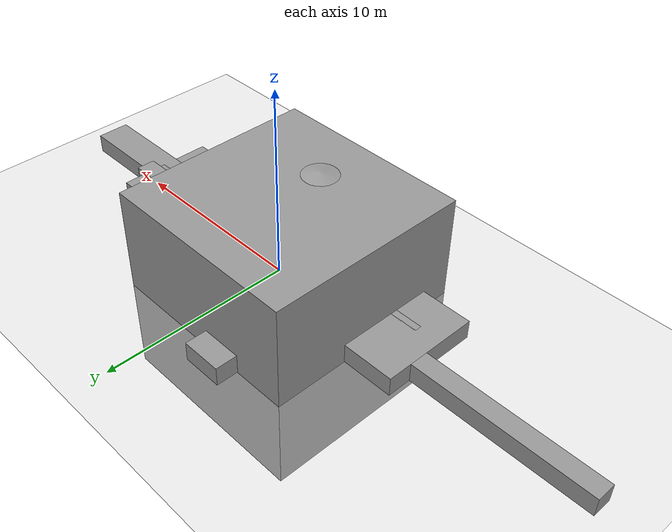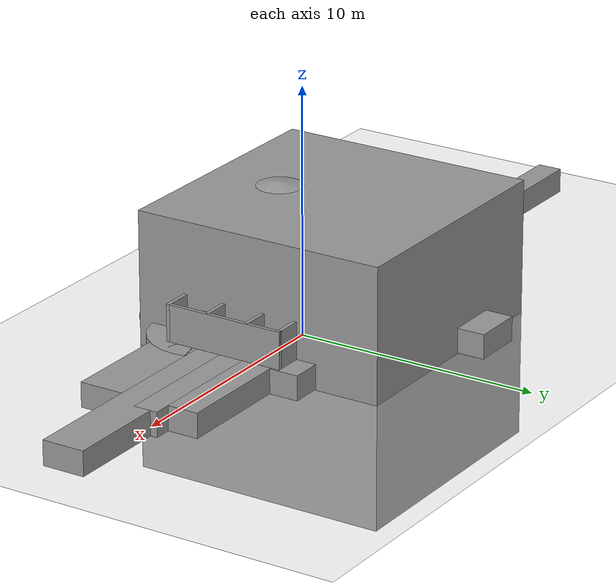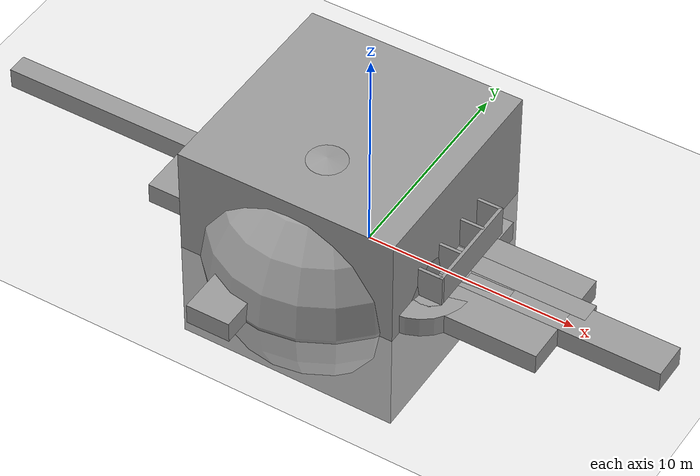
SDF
<sdf version="1.7">
 <world name="default">
  <light name="sun" type="directional">
   <pose>0 0 10 0 -0 0</pose>
   <diffuse>0.8 0.8 0.8 1</diffuse>
   <specular>0.2 0.2 0.2 1</specular>
   <attenuation>
    <range>1000</range>
    <constant>0.9</constant>
    <linear>0.01</linear>
    <quadratic>0.001</quadratic>
   </attenuation>
   <direction>-0.5 0.1 -0.9</direction>
   <spot><inner_angle>0</inner_angle><outer_angle>0</outer_angle><falloff>0</falloff></spot>
  </light>
  <model name="ground_plane">
   <static>1</static>
   <link name="link">
    <collision name="collision">
     <geometry><plane><normal>0 0 1</normal><size>100 100</size></plane></geometry>
     <surface>
      <contact><collide_bitmask>65535</collide_bitmask></contact>
      <friction><ode><mu>100</mu><mu2>50</mu2></ode></friction>
     </surface>
    </collision>
    <visual name="visual">
     <cast_shadows>0</cast_shadows>
     <geometry><plane><normal>0 0 1</normal><size>100 100</size></plane></geometry>
     <material>
      <script><uri>file://media/materials/scripts/gazebo.material</uri><name>Gazebo/Grey</name></script>
     </material>
    </visual>
   </link>
  </model>
  <gravity>0 0 -9.8</gravity>
  <magnetic_field>6e-06 2.3e-05 -4.2e-05</magnetic_field>
  <atmosphere type="adiabatic"/>
  <physics type="ode">
   <max_step_size>0.001</max_step_size>
   <real_time_factor>1</real_time_factor>
   <real_time_update_rate>1000</real_time_update_rate>
  </physics>
  <scene><ambient>0.4 0.4 0.4 1</ambient><background>0.7 0.7 0.7 1</background><shadows>1</shadows></scene>
  <audio><device>default</device></audio>
  <spherical_coordinates>
   <surface_model>EARTH_WGS84</surface_model>
   <latitude_deg>0</latitude_deg>
   <longitude_deg>0</longitude_deg>
   <elevation>0</elevation>
   <heading_deg>0</heading_deg>
  </spherical_coordinates>
  <model name="sixroom_0">
   <pose>0.171123 2.13265 0 0 -0 0</pose>
   <link name="Wall_112">
    <collision name="Wall_112_Collision">
     <geometry><box><size>0.5 0.15 2.5</size></box></geometry>
     <pose>0 0 1.25 0 -0 0</pose>
    </collision>
    <visual name="Wall_112_Visual">
     <pose>0 0 1.25 0 -0 0</pose>
     <geometry><box><size>0.5 0.15 2.5</size></box></geometry>
     <material>
      <script><uri>file://media/materials/scripts/gazebo.material</uri><name>Gazebo/Grey</name></script>
      <ambient>1 1 1 1</ambient>
     </material>
     <meta><layer>0</layer></meta>
    </visual>
    <pose>-2.487 -4.46743 0 0 -0 1.5708</pose>
   </link>
   <link name="Wall_66">
    <collision name="Wall_66_Collision">
     <geometry><box><size>10 0.15 2.5</size></box></geometry>
     <pose>0 0 1.25 0 -0 0</pose>
    </collision>
    <visual name="Wall_66_Visual">
     <pose>0 0 1.25 0 -0 0</pose>
     <geometry><box><size>10 0.15 2.5</size></box></geometry>
     <material>
      <script><uri>file://media/materials/scripts/gazebo.material</uri><name>Gazebo/Grey</name></script>
      <ambient>1 1 1 1</ambient>
     </material>
     <meta><layer>0</layer></meta>
    </visual>
    <pose>-0 0.11857 0 0 -0 0</pose>
   </link>
   <link name="Wall_67">
    <collision name="Wall_67_Collision">
     <geometry><box><size>5 0.15 2.5</size></box></geometry>
     <pose>0 0 1.25 0 -0 0</pose>
    </collision>
    <visual name="Wall_67_Visual">
     <pose>0 0 1.25 0 -0 0</pose>
     <geometry><box><size>5 0.15 2.5</size></box></geometry>
     <material>
      <script><uri>file://media/materials/scripts/gazebo.material</uri><name>Gazebo/Grey</name></script>
      <ambient>1 1 1 1</ambient>
     </material>
     <meta><layer>0</layer></meta>
    </visual>
    <pose>4.925 -2.30643 0 0 -0 -1.5708</pose>
   </link>
   <link name="Wall_68">
    <collision name="Wall_68_Collision">
     <geometry><box><size>10 0.15 2.5</size></box></geometry>
     <pose>0 0 1.25 0 -0 0</pose>
    </collision>
    <visual name="Wall_68_Visual">
     <pose>0 0 1.25 0 -0 0</pose>
     <geometry><box><size>10 0.15 2.5</size></box></geometry>
     <material>
      <script><uri>file://media/materials/scripts/gazebo.material</uri><name>Gazebo/Grey</name></script>
      <ambient>1 1 1 1</ambient>
     </material>
     <meta><layer>0</layer></meta>
    </visual>
    <pose>-0 -4.73143 0 0 -0 3.14159</pose>
   </link>
   <link name="Wall_69">
    <collision name="Wall_69_Collision">
     <geometry><box><size>5 0.15 2.5</size></box></geometry>
     <pose>0 0 1.25 0 -0 0</pose>
    </collision>
    <visual name="Wall_69_Visual">
     <pose>0 0 1.25 0 -0 0</pose>
     <geometry><box><size>5 0.15 2.5</size></box></geometry>
     <material>
      <script><uri>file://media/materials/scripts/gazebo.material</uri><name>Gazebo/Grey</name></script>
      <ambient>1 1 1 1</ambient>
     </material>
     <meta><layer>0</layer></meta>
    </visual>
    <pose>-4.925 -2.30643 0 0 -0 1.5708</pose>
   </link>
   <link name="Wall_71">
    <collision name="Wall_71_Collision">
     <geometry><box><size>1.25 0.15 2.5</size></box></geometry>
     <pose>0 0 1.25 0 -0 0</pose>
    </collision>
    <visual name="Wall_71_Visual">
     <pose>0 0 1.25 0 -0 0</pose>
     <geometry><box><size>1.25 0.15 2.5</size></box></geometry>
     <material>
      <script><uri>file://media/materials/scripts/gazebo.material</uri><name>Gazebo/Grey</name></script>
      <ambient>1 1 1 1</ambient>
     </material>
     <meta><layer>0</layer></meta>
    </visual>
    <pose>-4.3635 -1.35343 0 0 -0 0</pose>
   </link>
   <link name="Wall_73">
    <collision name="Wall_73_Collision">
     <geometry><box><size>0.75 0.15 2.5</size></box></geometry>
     <pose>0 0 1.25 0 -0 0</pose>
    </collision>
    <visual name="Wall_73_Visual">
     <pose>0 0 1.25 0 -0 0</pose>
     <geometry><box><size>0.75 0.15 2.5</size></box></geometry>
     <material>
      <script><uri>file://media/materials/scripts/gazebo.material</uri><name>Gazebo/Grey</name></script>
      <ambient>1 1 1 1</ambient>
     </material>
     <meta><layer>0</layer></meta>
    </visual>
    <pose>-3.131 -0.27343 0 0 -0 -1.5708</pose>
   </link>
   <link name="Wall_75">
    <collision name="Wall_75_Collision">
     <geometry><box><size>2 0.15 2.5</size></box></geometry>
     <pose>0 0 1.25 0 -0 0</pose>
    </collision>
    <visual name="Wall_75_Visual">
     <pose>0 0 1.25 0 -0 0</pose>
     <geometry><box><size>2 0.15 2.5</size></box></geometry>
     <material>
      <script><uri>file://media/materials/scripts/gazebo.material</uri><name>Gazebo/Grey</name></script>
      <ambient>1 1 1 1</ambient>
     </material>
     <meta><layer>0</layer></meta>
    </visual>
    <pose>-2.16 -1.35343 0 0 -0 0</pose>
   </link>
   <link name="Wall_77">
    <collision name="Wall_77_Collision">
     <geometry><box><size>2.75 0.15 2.5</size></box></geometry>
     <pose>0 0 1.25 0 -0 0</pose>
    </collision>
    <visual name="Wall_77_Visual">
     <pose>0 0 1.25 0 -0 0</pose>
     <geometry><box><size>2.75 0.15 2.5</size></box></geometry>
     <material>
      <script><uri>file://media/materials/scripts/gazebo.material</uri><name>Gazebo/Grey</name></script>
      <ambient>1 1 1 1</ambient>
     </material>
     <meta><layer>0</layer></meta>
    </visual>
    <pose>0.8945 -1.31893 0 0 -0 0</pose>
   </link>
   <link name="Wall_79">
    <collision name="Wall_79_Collision">
     <geometry><box><size>2 0.15 2.5</size></box></geometry>
     <pose>0 0 1.25 0 -0 0</pose>
    </collision>
    <visual name="Wall_79_Visual">
     <pose>0 0 1.25 0 -0 0</pose>
     <geometry><box><size>2 0.15 2.5</size></box></geometry>
     <material>
      <script><uri>file://media/materials/scripts/gazebo.material</uri><name>Gazebo/Grey</name></script>
      <ambient>1 1 1 1</ambient>
     </material>
     <meta><layer>0</layer></meta>
    </visual>
    <pose>3.935 -1.29593 0 0 -0 0</pose>
   </link>
   <link name="Wall_81">
    <collision name="Wall_81_Collision">
     <geometry><box><size>0.75 0.15 2.5</size></box></geometry>
     <pose>0 0 1.25 0 -0 0</pose>
    </collision>
    <visual name="Wall_81_Visual">
     <pose>0 0 1.25 0 -0 0</pose>
     <geometry><box><size>0.75 0.15 2.5</size></box></geometry>
     <material>
      <script><uri>file://media/materials/scripts/gazebo.material</uri><name>Gazebo/Grey</name></script>
      <ambient>1 1 1 1</ambient>
     </material>
     <meta><layer>0</layer></meta>
    </visual>
    <pose>2.228 -0.19293 0 0 -0 -1.5708</pose>
   </link>
   <link name="Wall_83">
    <collision name="Wall_83_Collision">
     <geometry><box><size>2.5 0.15 2.5</size></box></geometry>
     <pose>0 0 1.25 0 -0 0</pose>
    </collision>
    <visual name="Wall_83_Visual">
     <pose>0 0 1.25 0 -0 0</pose>
     <geometry><box><size>2.5 0.15 2.5</size></box></geometry>
     <material>
      <script><uri>file://media/materials/scripts/gazebo.material</uri><name>Gazebo/Grey</name></script>
      <ambient>1 1 1 1</ambient>
     </material>
     <meta><layer>0</layer></meta>
    </visual>
    <pose>-3.6925 -3.02093 0 0 -0 0</pose>
   </link>
   <link name="Wall_85">
    <collision name="Wall_85_Collision">
     <geometry><box><size>0.75 0.15 2.5</size></box></geometry>
     <pose>0 0 1.25 0 -0 0</pose>
    </collision>
    <visual name="Wall_85_Visual">
     <pose>0 0 1.25 0 -0 0</pose>
     <geometry><box><size>0.75 0.15 2.5</size></box></geometry>
     <material>
      <script><uri>file://media/materials/scripts/gazebo.material</uri><name>Gazebo/Grey</name></script>
      <ambient>1 1 1 1</ambient>
     </material>
     <meta><layer>0</layer></meta>
    </visual>
    <pose>-2.5175 -3.32093 0 0 -0 -1.5708</pose>
   </link>
   <link name="Wall_91">
    <collision name="Wall_91_Collision">
     <geometry><box><size>0.15 0.15 2.5</size></box></geometry>
     <pose>0 0 1.25 0 -0 0</pose>
    </collision>
    <visual name="Wall_91_Visual">
     <pose>0 0 1.25 0 -0 0</pose>
     <geometry><box><size>0.15 0.15 2.5</size></box></geometry>
     <material>
      <script><uri>file://media/materials/scripts/gazebo.material</uri><name>Gazebo/Grey</name></script>
      <ambient>1 1 1 1</ambient>
     </material>
     <meta><layer>0</layer></meta>
    </visual>
    <pose>-2.51 -4.43193 0 0 -0 0</pose>
   </link>
   <link name="Wall_93">
    <collision name="Wall_93_Collision">
     <geometry><box><size>4.25 0.15 2.5</size></box></geometry>
     <pose>0 0 1.25 0 -0 0</pose>
    </collision>
    <visual name="Wall_93_Visual">
     <pose>0 0 1.25 0 -0 0</pose>
     <geometry><box><size>4.25 0.15 2.5</size></box></geometry>
     <material>
      <script><uri>file://media/materials/scripts/gazebo.material</uri><name>Gazebo/Grey</name></script>
      <ambient>1 1 1 1</ambient>
     </material>
     <meta><layer>0</layer></meta>
    </visual>
    <pose>-0.4675 -3.02093 0 0 -0 0</pose>
   </link>
   <link name="Wall_95">
    <collision name="Wall_95_Collision">
     <geometry><box><size>2.25 0.15 2.5</size></box></geometry>
     <pose>0 0 1.25 0 -0 0</pose>
    </collision>
    <visual name="Wall_95_Visual">
     <pose>0 0 1.25 0 -0 0</pose>
     <geometry><box><size>2.25 0.15 2.5</size></box></geometry>
     <material>
      <script><uri>file://media/materials/scripts/gazebo.material</uri><name>Gazebo/Grey</name></script>
      <ambient>1 1 1 1</ambient>
     </material>
     <meta><layer>0</layer></meta>
    </visual>
    <pose>3.7955 -3.03243 0 0 -0 0</pose>
   </link>
   <static>1</static>
  </model>
  <model name="unit_sphere">
   <pose>1.00894 1.41064 0.238061 0 -0 0</pose>
   <link name="link">
    <inertial>
     <mass>1</mass>
     <inertia><ixx>0.1</ixx><ixy>0</ixy><ixz>0</ixz><iyy>0.1</iyy><iyz>0</iyz><izz>0.1</izz></inertia>
    </inertial>
    <collision name="collision"><geometry><sphere><radius>2.20563</radius></sphere></geometry></collision>
    <visual name="visual">
     <geometry><sphere><radius>2.20563</radius></sphere></geometry>
     <material>
      <script><name>Gazebo/Grey</name><uri>file://media/materials/scripts/gazebo.material</uri></script>
     </material>
    </visual>
   </link>
  </model>
  <model name="unit_cylinder_0">
   <pose>1.26052 0.053203 0.247885 0 -0 0</pose>
   <link name="link">
    <inertial>
     <mass>1</mass>
     <inertia><ixx>0.145833</ixx><ixy>0</ixy><ixz>0</ixz><iyy>0.145833</iyy><iyz>0</iyz><izz>0.125</izz></inertia>
    </inertial>
    <collision name="collision">
     <geometry><cylinder><radius>2.03415</radius><length>4.06832</length></cylinder></geometry>
    </collision>
    <visual name="visual">
     <geometry><cylinder><radius>2.03415</radius><length>4.06832</length></cylinder></geometry>
     <material>
      <script><name>Gazebo/Grey</name><uri>file://media/materials/scripts/gazebo.material</uri></script>
     </material>
    </visual>
   </link>
  </model>
  <model name="unit_cylinder_1">
   <pose>3.63546 -1.81008 0.499991 -1e-06 -0 3e-06</pose>
   <link name="link">
    <inertial>
     <mass>1</mass>
     <inertia><ixx>0.145833</ixx><ixy>0</ixy><ixz>0</ixz><iyy>0.145833</iyy><iyz>0</iyz><izz>0.125</izz></inertia>
    </inertial>
    <collision name="collision">
     <geometry><cylinder><radius>2.36604</radius><length>1</length></cylinder></geometry>
    </collision>
    <visual name="visual">
     <geometry><cylinder><radius>2.36604</radius><length>1</length></cylinder></geometry>
     <material>
      <script><name>Gazebo/Grey</name><uri>file://media/materials/scripts/gazebo.material</uri></script>
     </material>
    </visual>
   </link>
  </model>
  <model name="unit_box">
   <pose>-1.2566 0.549959 0.15426 -0 -0 -0</pose>
   <link name="link">
    <inertial>
     <mass>1</mass>
     <inertia>
      <ixx>0.166667</ixx>
      <ixy>0</ixy>
      <ixz>0</ixz>
      <iyy>0.166667</iyy>
      <iyz>0</iyz>
      <izz>0.166667</izz>
     </inertia>
    </inertial>
    <collision name="collision"><geometry><box><size>10.5059 10.5059 10.5059</size></box></geometry></collision>
    <visual name="visual">
     <geometry><box><size>10.5059 10.5059 10.5059</size></box></geometry>
     <material>
      <script><name>Gazebo/Grey</name><uri>file://media/materials/scripts/gazebo.material</uri></script>
     </material>
    </visual>
   </link>
  </model>
  <model name="unit_box_0">
   <pose>-2.77222 -0.685228 0.499998 0 5e-06 -1e-06</pose>
   <link name="link">
    <inertial>
     <mass>1</mass>
     <inertia>
      <ixx>0.166667</ixx>
      <ixy>0</ixy>
      <ixz>0</ixz>
      <iyy>0.166667</iyy>
      <iyz>0</iyz>
      <izz>0.166667</izz>
     </inertia>
    </inertial>
    <collision name="collision"><geometry><box><size>2.10183 15.2463 1</size></box></geometry></collision>
    <visual name="visual">
     <geometry><box><size>2.10183 15.2463 1</size></box></geometry>
     <material>
      <script><name>Gazebo/Grey</name><uri>file://media/materials/scripts/gazebo.material</uri></script>
     </material>
    </visual>
   </link>
  </model>
  <model name="unit_box_1">
   <pose>4.7985 -0.05203 0.5 0 -0 -4e-06</pose>
   <link name="link">
    <inertial>
     <mass>1</mass>
     <inertia>
      <ixx>0.166667</ixx>
      <ixy>0</ixy>
      <ixz>0</ixz>
      <iyy>0.166667</iyy>
      <iyz>0</iyz>
      <izz>0.166667</izz>
     </inertia>
    </inertial>
    <collision name="collision"><geometry><box><size>5.04407 1.71589 1</size></box></geometry></collision>
    <visual name="visual">
     <geometry><box><size>5.04407 1.71589 1</size></box></geometry>
     <material>
      <script><name>Gazebo/Grey</name><uri>file://media/materials/scripts/gazebo.material</uri></script>
     </material>
    </visual>
   </link>
  </model>
  <model name="unit_box_2">
   <pose>0.36361 -0.592147 0.499999 5e-06 -0 0</pose>
   <link name="link">
    <inertial>
     <mass>1</mass>
     <inertia>
      <ixx>0.166667</ixx>
      <ixy>0</ixy>
      <ixz>0</ixz>
      <iyy>0.166667</iyy>
      <iyz>0</iyz>
      <izz>0.166667</izz>
     </inertia>
    </inertial>
    <collision name="collision"><geometry><box><size>19.1544 5.11235 1</size></box></geometry></collision>
    <visual name="visual">
     <geometry><box><size>19.1544 5.11235 1</size></box></geometry>
     <material>
      <script><name>Gazebo/Grey</name><uri>file://media/materials/scripts/gazebo.material</uri></script>
     </material>
    </visual>
   </link>
  </model>
  <model name="unit_box_3">
   <pose>-3.96107 0.20422 0.5 0 -1e-06 1e-06</pose>
   <link name="link">
    <inertial>
     <mass>1</mass>
     <inertia>
      <ixx>0.166667</ixx>
      <ixy>0</ixy>
      <ixz>0</ixz>
      <iyy>0.166667</iyy>
      <iyz>0</iyz>
      <izz>0.166667</izz>
     </inertia>
    </inertial>
    <collision name="collision"><geometry><box><size>29.2172 1 1</size></box></geometry></collision>
    <visual name="visual">
     <geometry><box><size>29.2172 1 1</size></box></geometry>
     <material>
      <script><name>Gazebo/Grey</name><uri>file://media/materials/scripts/gazebo.material</uri></script>
     </material>
    </visual>
   </link>
  </model>
  <model name="unit_box_4">
   <pose>3.37762 -0.445882 0.5 0 -0 0</pose>
   <link name="link">
    <inertial>
     <mass>1</mass>
     <inertia>
      <ixx>0.166667</ixx>
      <ixy>0</ixy>
      <ixz>0</ixz>
      <iyy>0.166667</iyy>
      <iyz>0</iyz>
      <izz>0.166667</izz>
     </inertia>
    </inertial>
    <collision name="collision"><geometry><box><size>22.7079 1.74138 1</size></box></geometry></collision>
    <visual name="visual">
     <geometry><box><size>22.7079 1.74138 1</size></box></geometry>
     <material>
      <script><name>Gazebo/Grey</name><uri>file://media/materials/scripts/gazebo.material</uri></script>
     </material>
    </visual>
   </link>
  </model>
  <model name="unit_box_5">
   <pose>1.15292 -2.10966 0.499995 0 -1e-05 -7e-06</pose>
   <link name="link">
    <inertial>
     <mass>1</mass>
     <inertia>
      <ixx>0.166667</ixx>
      <ixy>0</ixy>
      <ixz>0</ixz>
      <iyy>0.166667</iyy>
      <iyz>0</iyz>
      <izz>0.166667</izz>
     </inertia>
    </inertial>
    <collision name="collision"><geometry><box><size>1 1.45777 1</size></box></geometry></collision>
    <visual name="visual">
     <geometry><box><size>1 1.45777 1</size></box></geometry>
     <material>
      <script><name>Gazebo/Grey</name><uri>file://media/materials/scripts/gazebo.material</uri></script>
     </material>
    </visual>
   </link>
  </model>
  <model name="unit_sphere_0">
   <pose>-1.0405 -1.70779 0.152122 0 -0 0</pose>
   <link name="link">
    <inertial>
     <mass>1</mass>
     <inertia><ixx>0.1</ixx><ixy>0</ixy><ixz>0</ixz><iyy>0.1</iyy><iyz>0</iyz><izz>0.1</izz></inertia>
    </inertial>
    <collision name="collision"><geometry><sphere><radius>5.40165</radius></sphere></geometry></collision>
    <visual name="visual">
     <geometry><sphere><radius>5.40165</radius></sphere></geometry>
     <material>
      <script><name>Gazebo/Grey</name><uri>file://media/materials/scripts/gazebo.material</uri></script>
     </material>
    </visual>
   </link>
  </model>
  <model name="unit_box_6">
   <pose>4.07256 1.1616 0.5 -0 -0 -3.9e-05</pose>
   <link name="link">
    <inertial>
     <mass>1</mass>
     <inertia>
      <ixx>0.166667</ixx>
      <ixy>0</ixy>
      <ixz>0</ixz>
      <iyy>0.166667</iyy>
      <iyz>0</iyz>
      <izz>0.166667</izz>
     </inertia>
    </inertial>
    <collision name="collision"><geometry><box><size>2.3553 4.00416 1</size></box></geometry></collision>
    <visual name="visual">
     <geometry><box><size>2.3553 4.00416 1</size></box></geometry>
     <material>
      <script><name>Gazebo/Grey</name><uri>file://media/materials/scripts/gazebo.material</uri></script>
     </material>
    </visual>
   </link>
  </model>
  <model name="unit_box_7">
   <pose>-1.34747 1.8051 0.5 0 -0 0</pose>
   <link name="link">
    <inertial>
     <mass>1</mass>
     <inertia>
      <ixx>0.166667</ixx>
      <ixy>0</ixy>
      <ixz>0</ixz>
      <iyy>0.166667</iyy>
      <iyz>0</iyz>
      <izz>0.166667</izz>
     </inertia>
    </inertial>
    <collision name="collision"><geometry><box><size>1 1.81517 1</size></box></geometry></collision>
    <visual name="visual">
     <geometry><box><size>1 1.81517 1</size></box></geometry>
     <material>
      <script><name>Gazebo/Grey</name><uri>file://media/materials/scripts/gazebo.material</uri></script>
     </material>
    </visual>
   </link>
  </model>
 </world>
</sdf>
